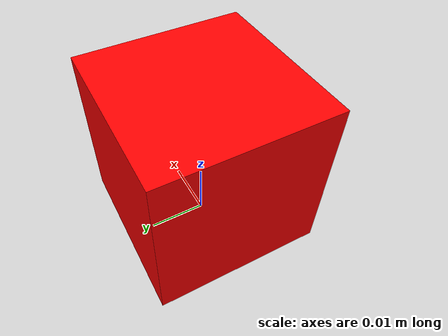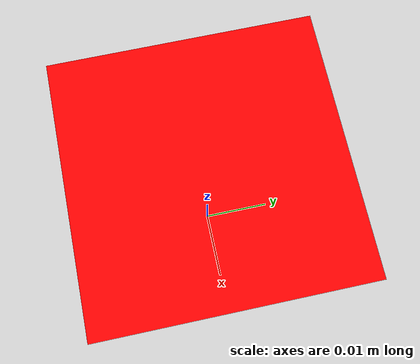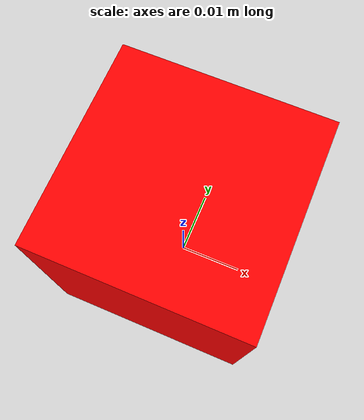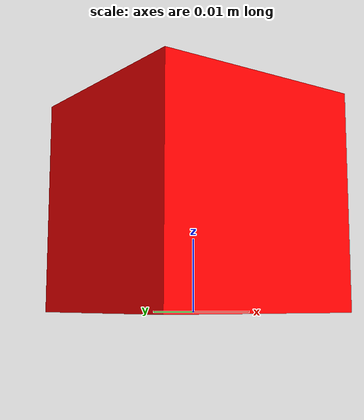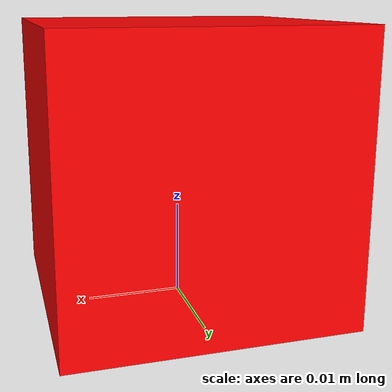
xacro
<?xml version="1.0"?>
<robot xmlns:xacro="http://www.ros.org/wiki/xacro" name="tracker">
    <link name="world"/>
    <gazebo reference="tracking_dot">
        <!-- must come before the link definition (major ???) -->
        <material>Gazebo/Red</material>
    </gazebo>
    <link name="tracking_dot">
        <visual>
            <origin xyz="0 0 0.015"/>
            <geometry>
                <box size="0.03 0.03 0.03"/>
            </geometry>
            <material name="red">
                <color rgba="1.0 0 0 1.0"/>
            </material>
        </visual>
        <inertial>
            <mass value="0.001"/>
            <inertia ixx="1"
                     ixy="0.00"
                     ixz="0.00"
                     iyy="1"
                     iyz="0.00"
                     izz="1"/> <!-- ${base_mass_kg/12*(base_x_m**2 + base_z_m**2)} -->
        </inertial>
    </link>

    <joint name="tracker" type="prismatic">
        <axis xyz="0 1 0"/>
        <parent link="world"/>
        <child link="tracking_dot"/>
        <origin rpy="0 0 0" xyz="0 0 0"/>
        <limit lower="-100" upper="100" effort="1000" velocity="1000"/>
    </joint>

</robot>
